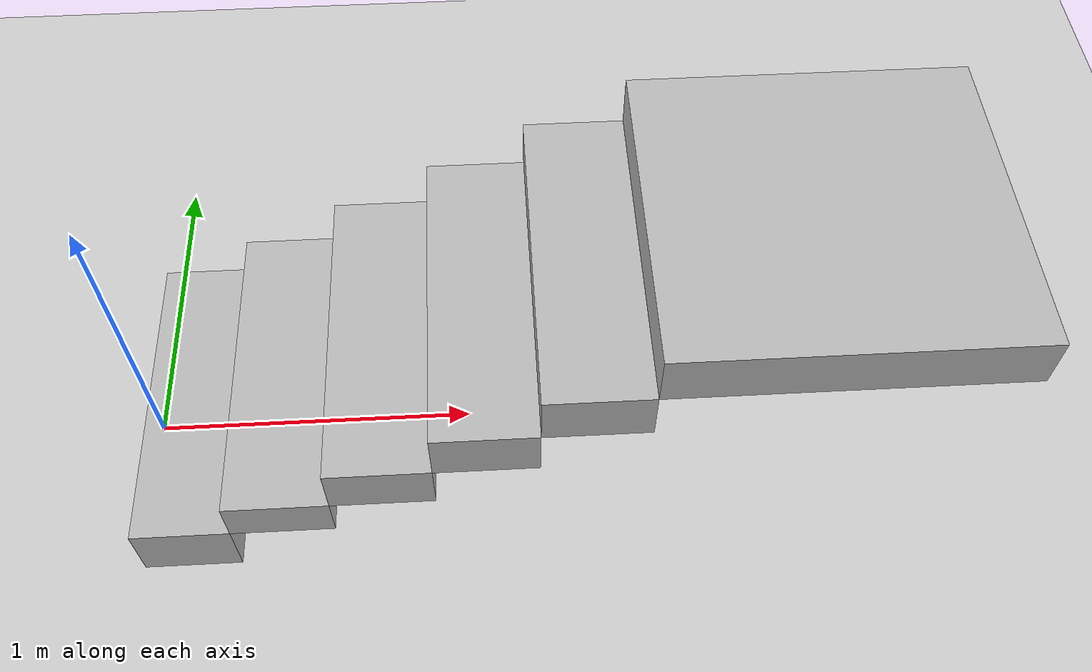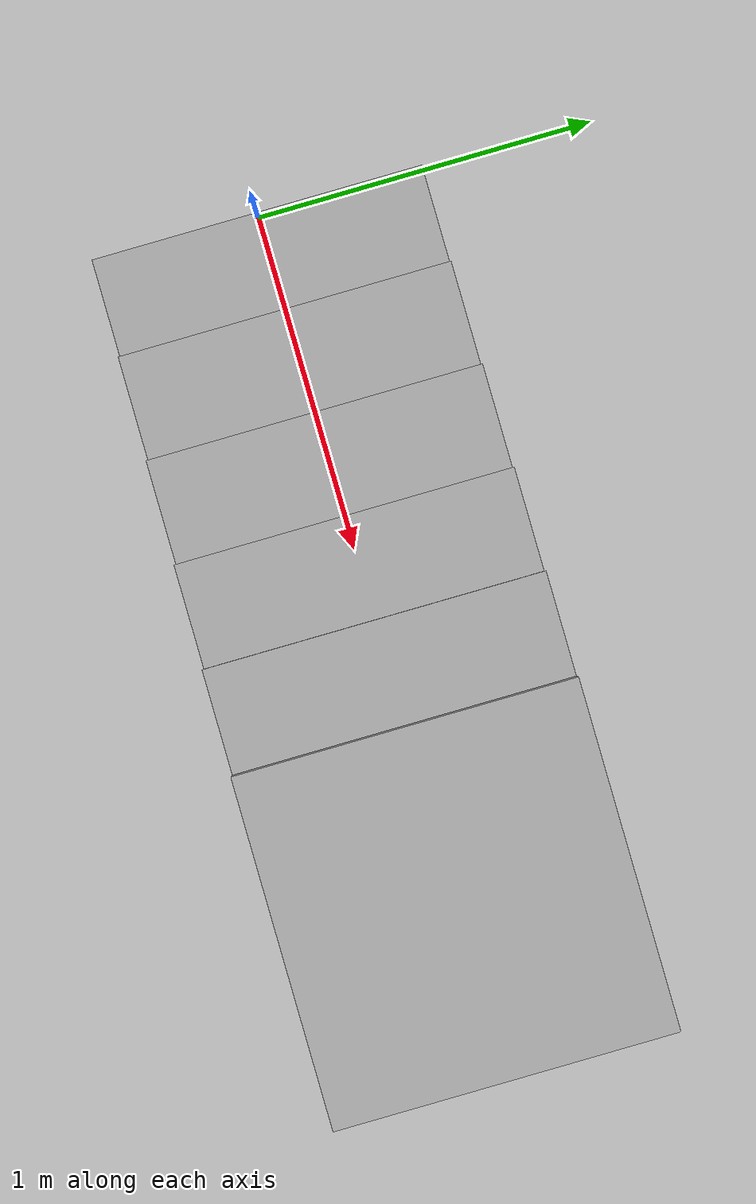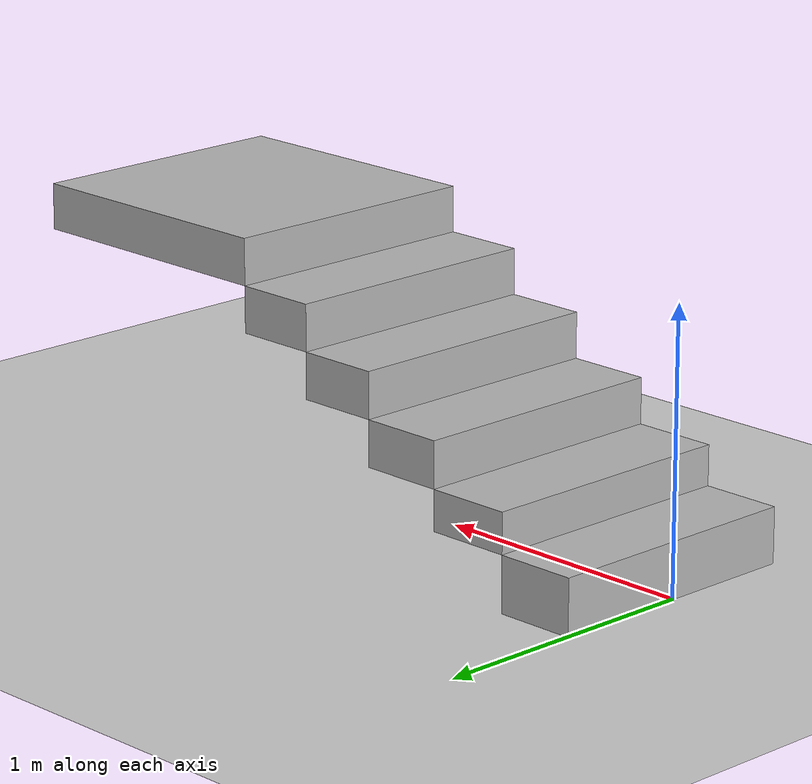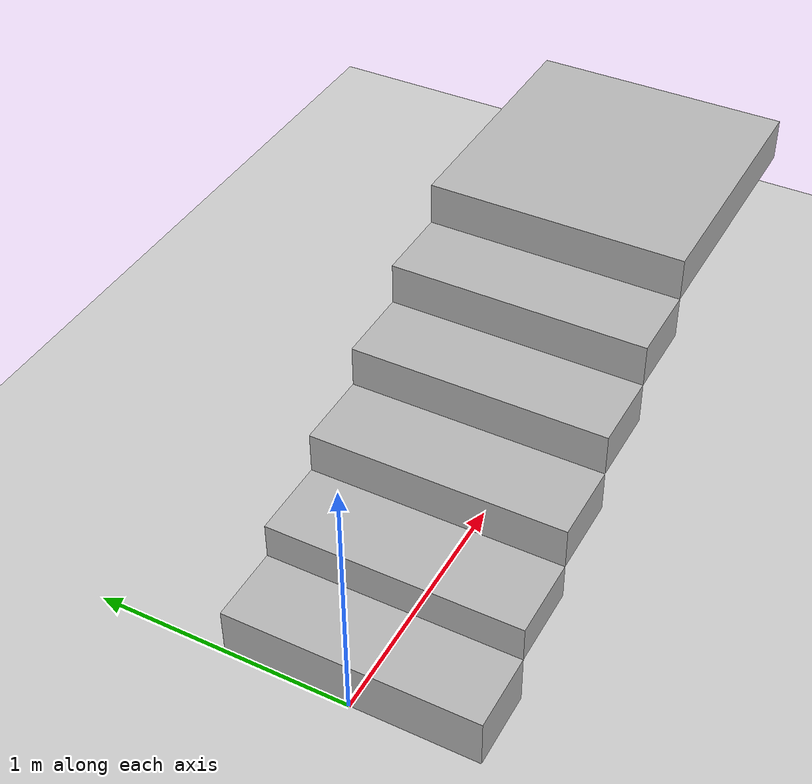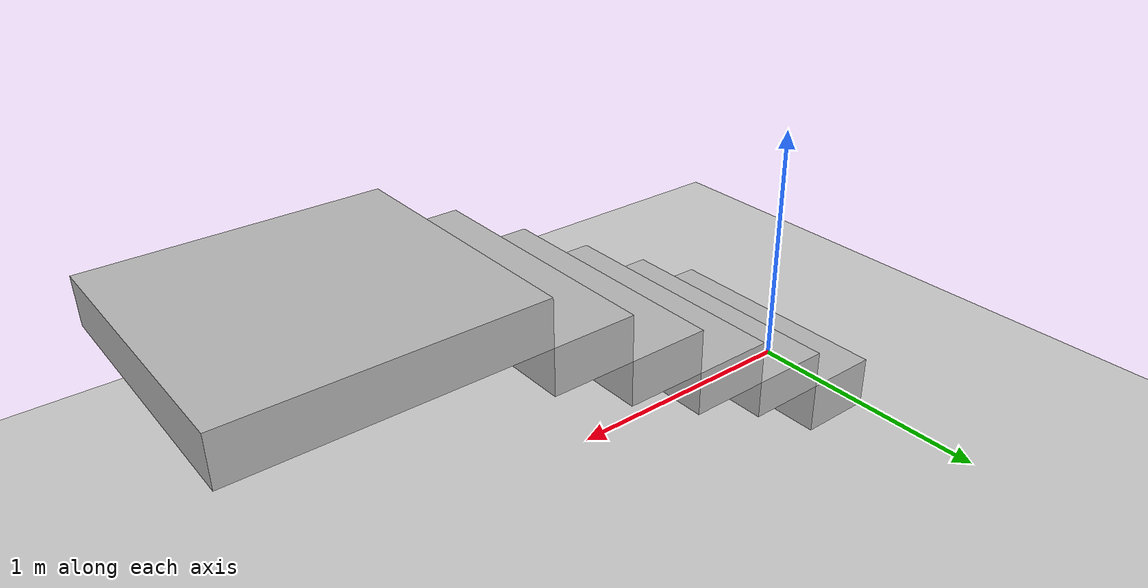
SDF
<?xml version="1.0" ?>
<sdf version="1.4">
  <world name="default">
    <include>
      <uri>model://ground_plane</uri>
    </include>
    <include>
      <uri>model://sun</uri>
    </include>
    <include>
      <uri>model://gazebo_worlds/models/stairs_unequal_steps</uri>
    </include>
    <physics type="ode">
      <gravity>0 0 -9.81</gravity>
    </physics>
  </world>
</sdf>

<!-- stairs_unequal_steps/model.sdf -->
<sdf version='1.4'>
  <model name="stairs_unequal">
    <static>true</static>
    <pose>0 0 0 0 0 0</pose>

    <link name='stairs1'>
      <pose>0.1475 0 0.1 0 0 0</pose>

      <collision name='collision'>
        <geometry>
          <box>
            <size>0.295 0.98 0.2</size>
          </box>
        </geometry>
      </collision>

      <visual name='visual'>
        <geometry>
          <box>
            <size>0.295 0.98 0.2</size>
          </box>
        </geometry>
      </visual>
    </link>

    <link name='stairs2'>
      <pose>0.45 0 0.2725 0 0 0</pose>

      <collision name='collision'>
        <geometry>
          <box>
            <size>0.31 0.98 0.145</size>
          </box>
        </geometry>
      </collision>

      <visual name='visual'>
        <geometry>
          <box>
            <size>0.31 0.98 0.145</size>
          </box>
        </geometry>
      </visual>
    </link>

    <link name='stairs3'>
      <pose>0.7575 0 0.4275 0 0 0</pose>

      <collision name='collision'>
        <geometry>
          <box>
            <size>0.305 0.98 0.165</size>
          </box>
        </geometry>
      </collision>

      <visual name='visual'>
        <geometry>
          <box>
            <size>0.305 0.98 0.165</size>
          </box>
        </geometry>
      </visual>
    </link>

    <link name='stairs4'>
      <pose>1.06 0 0.5925 0 0 0</pose>

      <collision name='collision'>
        <geometry>
          <box>
            <size>0.3 0.98 0.165</size>
          </box>
        </geometry>
      </collision>

      <visual name='visual'>
        <geometry>
          <box>
            <size>0.3 0.98 0.165</size>
          </box>
        </geometry>
      </visual>
    </link>

    <link name='stairs5'>
      <pose>1.36 0 0.7575 0 0 0</pose>

      <collision name='collision'>
        <geometry>
          <box>
            <size>0.3 0.98 0.165</size>
          </box>
        </geometry>
      </collision>

      <visual name='visual'>
        <geometry>
          <box>
            <size>0.3 0.98 0.165</size>
          </box>
        </geometry>
      </visual>
    </link>

    <link name='stairs6'>
      <pose>2.01 0 0.9225 0 0 0</pose>

      <collision name='collision'>
        <geometry>
          <box>
            <size>1 0.98 0.165</size>
          </box>
        </geometry>
      </collision>

      <visual name='visual'>
        <geometry>
          <box>
            <size>1 0.98 0.165</size>
          </box>
        </geometry>
      </visual>
    </link>

  </model>
</sdf>
